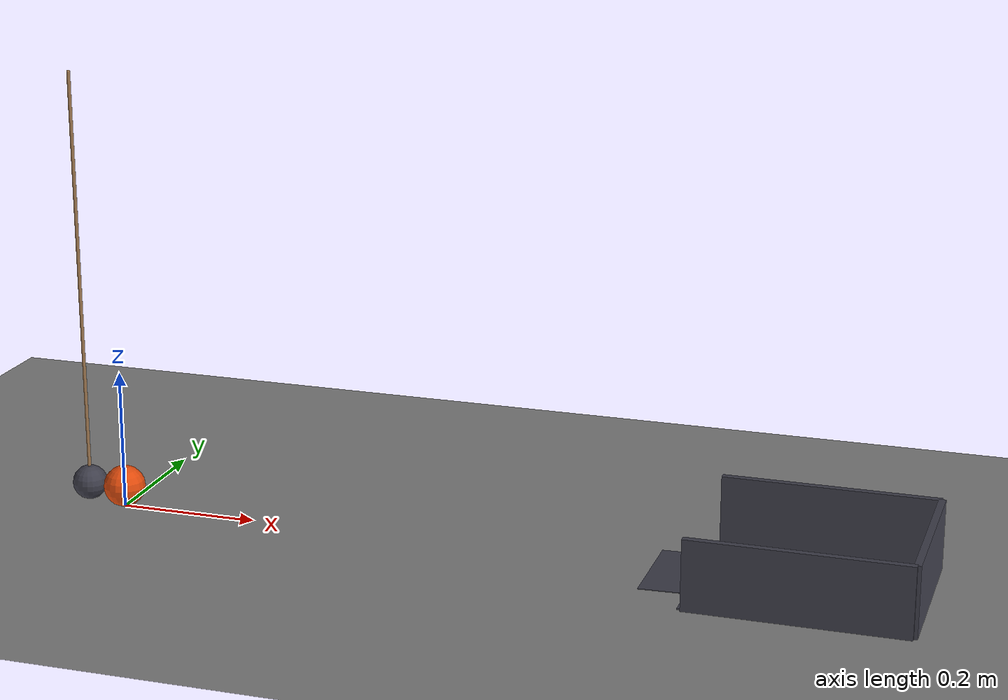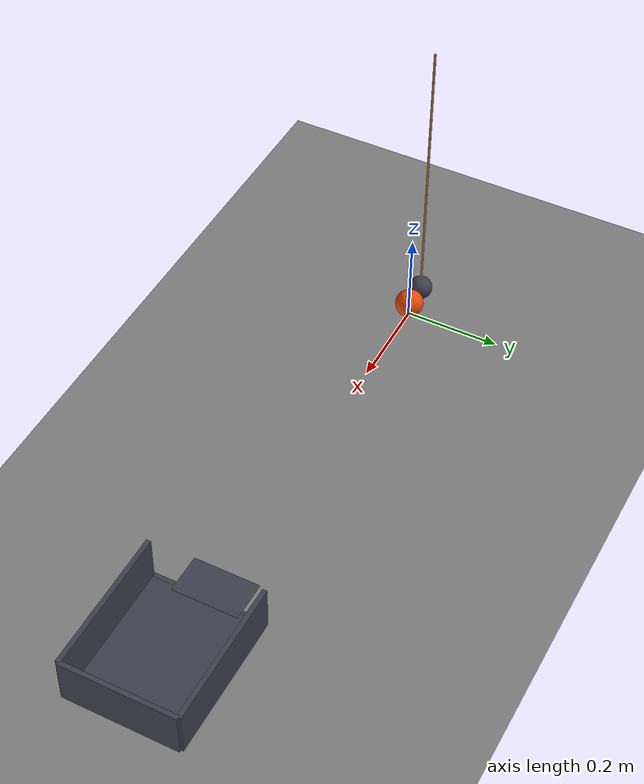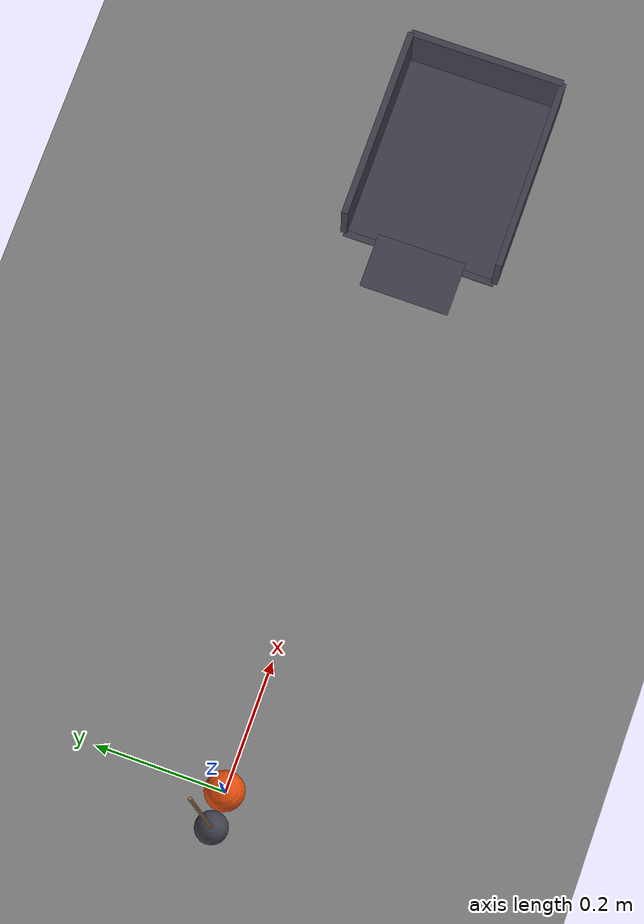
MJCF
<mujoco model="pendulum_rolls_a_ball_into_a_cup">
  <compiler angle="radian"/>
  <option timestep="0.002"/>
  <worldbody>
    <geom name="floor" type="plane" size="4 4 0.1" friction="0.6 0.001 0.0002"/>
    <body name="ball" pos="0 0 0.03">
      <freejoint/>
      <geom name="ball" type="sphere" pos="0 0 0" size="0.03" mass="0.08" condim="6" friction="0.6 0.001 0.0002" solref="0.01 1" rgba="0.9 0.3 0.05 1"/>
    </body>
    <body name="pendulum" pos="-0.055 0 0.63">
      <joint name="pendulum_hinge" type="hinge" pos="0 0 0" axis="0 1 0" limited="true" range="-0.785398 0.785398" damping="0.003"/>
      <geom name="pendulum" type="sphere" pos="0 0 -0.6" size="0.025" mass="0.3" solref="0.01 1" rgba="0.25 0.25 0.3 1"/>
      <geom name="pendulum rod" type="capsule" size="0.0025" fromto="0 0 0 0 0 -0.575" mass="0.01" rgba="0.6 0.45 0.3 1"/>
    </body>
    <body name="cup">
      <geom name="cup_base" type="box" pos="1 0 0.001" size="0.15 0.12 0.001" friction="0.9 0.01 0.003" solref="0.01 1" rgba="0.25 0.25 0.3 1"/>
      <geom name="cup_near_wall" type="box" pos="0.85 0 0.001" size="0.005 0.12 0.001" friction="0.9 0.01 0.003" solref="0.01 1" rgba="0.25 0.25 0.3 1"/>
      <geom name="cup_far_wall" type="box" pos="1.15 0 0.05" size="0.005 0.12 0.05" friction="0.9 0.01 0.003" solref="0.01 1" rgba="0.25 0.25 0.3 1"/>
      <geom name="cup_left_wall" type="box" pos="1 0.12 0.05" size="0.15 0.005 0.05" friction="0.9 0.01 0.003" solref="0.01 1" rgba="0.25 0.25 0.3 1"/>
      <geom name="cup_right_wall" type="box" pos="1 -0.12 0.05" size="0.15 0.005 0.05" friction="0.9 0.01 0.003" solref="0.01 1" rgba="0.25 0.25 0.3 1"/>
    </body>
    <body name="entry ramp">
      <geom name="entry ramp" type="box" pos="0.8225 0 0.001" size="0.0425118 0.07 0.0005" euler="0 -0.0235251 0" friction="0.6 0.001 0.0002" solref="0.01 1" rgba="0.25 0.25 0.3 1"/>
    </body>
  </worldbody>
  <keyframe>
    <key name="start" qpos="0 0 0.03 1 0 0 0 0.610865" qvel="0 0 0 0 0 0 0"/>
  </keyframe>
</mujoco>
